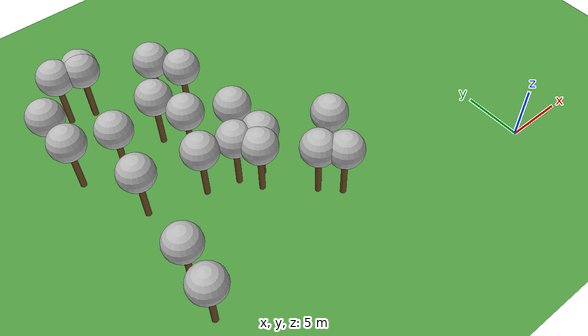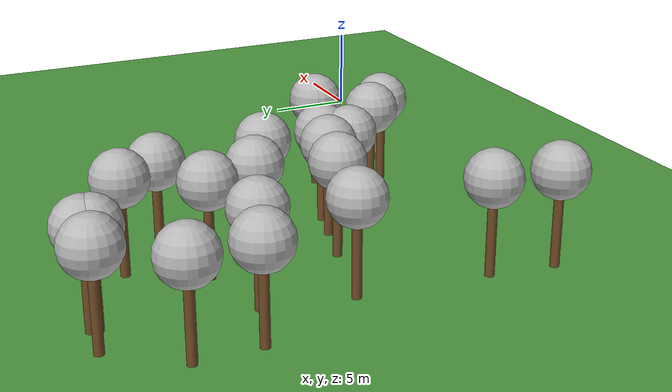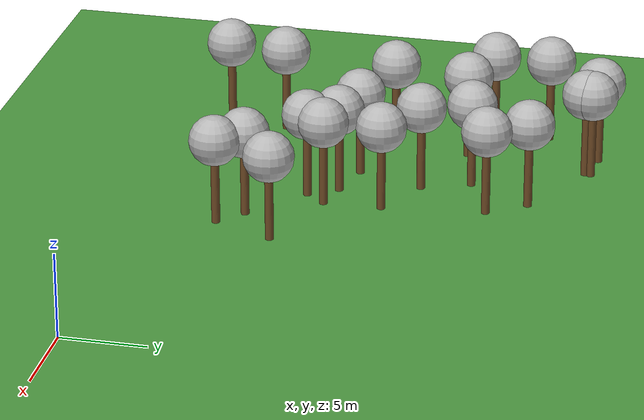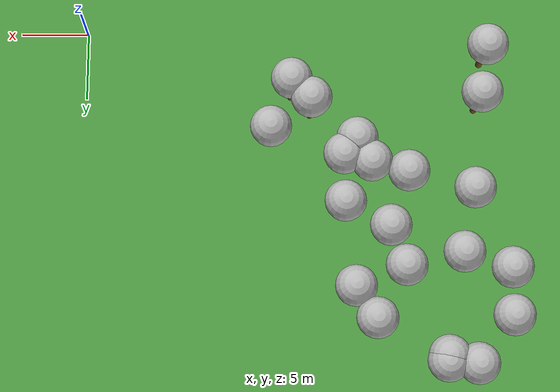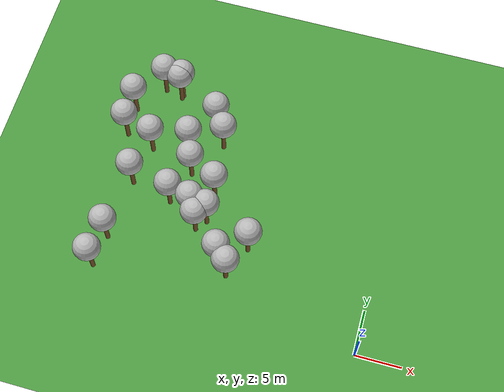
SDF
<sdf version="1.5">
 <world name="default">
  <model name="tree_simple498">
   <static>1</static>
   <link name="link">
    <pose>0 0 0.1 0 -0 0</pose>
    <collision name="collision_trunk">
     <pose>0 0 2 0 -0 0</pose>
     <geometry><cylinder><radius>0.25</radius><length>4</length></cylinder></geometry>
    </collision>
    <collision name="collision_treetop">
     <pose>0 0 5.2 0 -0 0</pose>
     <geometry><sphere><radius>1.5</radius></sphere></geometry>
    </collision>
    <visual name="trunk">
     <pose>0 0 2 0 -0 0</pose>
     <geometry><cylinder><radius>0.25</radius><length>4</length></cylinder></geometry>
     <material>
      <script>
       <uri>model://tree_simple/scripts</uri>
       <uri>model://tree_simple/materials/textures</uri>
       <name>TreeSimple/Trunk</name>
      </script>
     </material>
    </visual>
    <visual name="treetop">
     <pose>0 0 5.2 0 -0 0</pose>
     <geometry><sphere><radius>1.5</radius></sphere></geometry>
     <material>
      <script>
       <uri>model://tree_simple/scripts</uri>
       <uri>model://tree_simple/materials/textures</uri>
       <name>TreeSimple/Treetop</name>
      </script>
     </material>
    </visual>
   </link>
   <pose>-20.062069779 9.09254194943 0 0 -0 0</pose>
  </model>
  <model name="tree_simple493">
   <static>1</static>
   <link name="link">
    <pose>0 0 0.1 0 -0 0</pose>
    <collision name="collision_trunk">
     <pose>0 0 2 0 -0 0</pose>
     <geometry><cylinder><radius>0.25</radius><length>4</length></cylinder></geometry>
    </collision>
    <collision name="collision_treetop">
     <pose>0 0 5.2 0 -0 0</pose>
     <geometry><sphere><radius>1.5</radius></sphere></geometry>
    </collision>
    <visual name="trunk">
     <pose>0 0 2 0 -0 0</pose>
     <geometry><cylinder><radius>0.25</radius><length>4</length></cylinder></geometry>
     <material>
      <script>
       <uri>model://tree_simple/scripts</uri>
       <uri>model://tree_simple/materials/textures</uri>
       <name>TreeSimple/Trunk</name>
      </script>
     </material>
    </visual>
    <visual name="treetop">
     <pose>0 0 5.2 0 -0 0</pose>
     <geometry><sphere><radius>1.5</radius></sphere></geometry>
     <material>
      <script>
       <uri>model://tree_simple/scripts</uri>
       <uri>model://tree_simple/materials/textures</uri>
       <name>TreeSimple/Treetop</name>
      </script>
     </material>
    </visual>
   </link>
   <pose>-30.9686104206 18.3944298941 0 0 -0 0</pose>
  </model>
  <model name="tree_simple460">
   <static>1</static>
   <link name="link">
    <pose>0 0 0.1 0 -0 0</pose>
    <collision name="collision_trunk">
     <pose>0 0 2 0 -0 0</pose>
     <geometry><cylinder><radius>0.25</radius><length>4</length></cylinder></geometry>
    </collision>
    <collision name="collision_treetop">
     <pose>0 0 5.2 0 -0 0</pose>
     <geometry><sphere><radius>1.5</radius></sphere></geometry>
    </collision>
    <visual name="trunk">
     <pose>0 0 2 0 -0 0</pose>
     <geometry><cylinder><radius>0.25</radius><length>4</length></cylinder></geometry>
     <material>
      <script>
       <uri>model://tree_simple/scripts</uri>
       <uri>model://tree_simple/materials/textures</uri>
       <name>TreeSimple/Trunk</name>
      </script>
     </material>
    </visual>
    <visual name="treetop">
     <pose>0 0 5.2 0 -0 0</pose>
     <geometry><sphere><radius>1.5</radius></sphere></geometry>
     <material>
      <script>
       <uri>model://tree_simple/scripts</uri>
       <uri>model://tree_simple/materials/textures</uri>
       <name>TreeSimple/Treetop</name>
      </script>
     </material>
    </visual>
   </link>
   <pose>-19.1263542494 10.273291852 0 0 -0 0</pose>
  </model>
  <model name="tree_simple444">
   <static>1</static>
   <link name="link">
    <pose>0 0 0.1 0 -0 0</pose>
    <collision name="collision_trunk">
     <pose>0 0 2 0 -0 0</pose>
     <geometry><cylinder><radius>0.25</radius><length>4</length></cylinder></geometry>
    </collision>
    <collision name="collision_treetop">
     <pose>0 0 5.2 0 -0 0</pose>
     <geometry><sphere><radius>1.5</radius></sphere></geometry>
    </collision>
    <visual name="trunk">
     <pose>0 0 2 0 -0 0</pose>
     <geometry><cylinder><radius>0.25</radius><length>4</length></cylinder></geometry>
     <material>
      <script>
       <uri>model://tree_simple/scripts</uri>
       <uri>model://tree_simple/materials/textures</uri>
       <name>TreeSimple/Trunk</name>
      </script>
     </material>
    </visual>
    <visual name="treetop">
     <pose>0 0 5.2 0 -0 0</pose>
     <geometry><sphere><radius>1.5</radius></sphere></geometry>
     <material>
      <script>
       <uri>model://tree_simple/scripts</uri>
       <uri>model://tree_simple/materials/textures</uri>
       <name>TreeSimple/Treetop</name>
      </script>
     </material>
    </visual>
   </link>
   <pose>-23.7375888222 11.4825776361 0 0 -0 0</pose>
  </model>
  <model name="tree_simple440">
   <static>1</static>
   <link name="link">
    <pose>0 0 0.1 0 -0 0</pose>
    <collision name="collision_trunk">
     <pose>0 0 2 0 -0 0</pose>
     <geometry><cylinder><radius>0.25</radius><length>4</length></cylinder></geometry>
    </collision>
    <collision name="collision_treetop">
     <pose>0 0 5.2 0 -0 0</pose>
     <geometry><sphere><radius>1.5</radius></sphere></geometry>
    </collision>
    <visual name="trunk">
     <pose>0 0 2 0 -0 0</pose>
     <geometry><cylinder><radius>0.25</radius><length>4</length></cylinder></geometry>
     <material>
      <script>
       <uri>model://tree_simple/scripts</uri>
       <uri>model://tree_simple/materials/textures</uri>
       <name>TreeSimple/Trunk</name>
      </script>
     </material>
    </visual>
    <visual name="treetop">
     <pose>0 0 5.2 0 -0 0</pose>
     <geometry><sphere><radius>1.5</radius></sphere></geometry>
     <material>
      <script>
       <uri>model://tree_simple/scripts</uri>
       <uri>model://tree_simple/materials/textures</uri>
       <name>TreeSimple/Treetop</name>
      </script>
     </material>
    </visual>
   </link>
   <pose>-31.0139863597 21.7755311208 0 0 -0 0</pose>
  </model>
  <model name="tree_simple424">
   <static>1</static>
   <link name="link">
    <pose>0 0 0.1 0 -0 0</pose>
    <collision name="collision_trunk">
     <pose>0 0 2 0 -0 0</pose>
     <geometry><cylinder><radius>0.25</radius><length>4</length></cylinder></geometry>
    </collision>
    <collision name="collision_treetop">
     <pose>0 0 5.2 0 -0 0</pose>
     <geometry><sphere><radius>1.5</radius></sphere></geometry>
    </collision>
    <visual name="trunk">
     <pose>0 0 2 0 -0 0</pose>
     <geometry><cylinder><radius>0.25</radius><length>4</length></cylinder></geometry>
     <material>
      <script>
       <uri>model://tree_simple/scripts</uri>
       <uri>model://tree_simple/materials/textures</uri>
       <name>TreeSimple/Trunk</name>
      </script>
     </material>
    </visual>
    <visual name="treetop">
     <pose>0 0 5.2 0 -0 0</pose>
     <geometry><sphere><radius>1.5</radius></sphere></geometry>
     <material>
      <script>
       <uri>model://tree_simple/scripts</uri>
       <uri>model://tree_simple/materials/textures</uri>
       <name>TreeSimple/Treetop</name>
      </script>
     </material>
    </visual>
   </link>
   <pose>-16.7770993139 6.12178979124 0 0 -0 0</pose>
  </model>
  <model name="tree_simple393">
   <static>1</static>
   <link name="link">
    <pose>0 0 0.1 0 -0 0</pose>
    <collision name="collision_trunk">
     <pose>0 0 2 0 -0 0</pose>
     <geometry><cylinder><radius>0.25</radius><length>4</length></cylinder></geometry>
    </collision>
    <collision name="collision_treetop">
     <pose>0 0 5.2 0 -0 0</pose>
     <geometry><sphere><radius>1.5</radius></sphere></geometry>
    </collision>
    <visual name="trunk">
     <pose>0 0 2 0 -0 0</pose>
     <geometry><cylinder><radius>0.25</radius><length>4</length></cylinder></geometry>
     <material>
      <script>
       <uri>model://tree_simple/scripts</uri>
       <uri>model://tree_simple/materials/textures</uri>
       <name>TreeSimple/Trunk</name>
      </script>
     </material>
    </visual>
    <visual name="treetop">
     <pose>0 0 5.2 0 -0 0</pose>
     <geometry><sphere><radius>1.5</radius></sphere></geometry>
     <material>
      <script>
       <uri>model://tree_simple/scripts</uri>
       <uri>model://tree_simple/materials/textures</uri>
       <name>TreeSimple/Treetop</name>
      </script>
     </material>
    </visual>
   </link>
   <pose>-19.2161378336 13.717868908 0 0 -0 0</pose>
  </model>
  <model name="tree_simple360">
   <static>1</static>
   <link name="link">
    <pose>0 0 0.1 0 -0 0</pose>
    <collision name="collision_trunk">
     <pose>0 0 2 0 -0 0</pose>
     <geometry><cylinder><radius>0.25</radius><length>4</length></cylinder></geometry>
    </collision>
    <collision name="collision_treetop">
     <pose>0 0 5.2 0 -0 0</pose>
     <geometry><sphere><radius>1.5</radius></sphere></geometry>
    </collision>
    <visual name="trunk">
     <pose>0 0 2 0 -0 0</pose>
     <geometry><cylinder><radius>0.25</radius><length>4</length></cylinder></geometry>
     <material>
      <script>
       <uri>model://tree_simple/scripts</uri>
       <uri>model://tree_simple/materials/textures</uri>
       <name>TreeSimple/Trunk</name>
      </script>
     </material>
    </visual>
    <visual name="treetop">
     <pose>0 0 5.2 0 -0 0</pose>
     <geometry><sphere><radius>1.5</radius></sphere></geometry>
     <material>
      <script>
       <uri>model://tree_simple/scripts</uri>
       <uri>model://tree_simple/materials/textures</uri>
       <name>TreeSimple/Treetop</name>
      </script>
     </material>
    </visual>
   </link>
   <pose>-13.8761955988 8.30702560736 0 0 -0 0</pose>
  </model>
  <model name="tree_simple351">
   <static>1</static>
   <link name="link">
    <pose>0 0 0.1 0 -0 0</pose>
    <collision name="collision_trunk">
     <pose>0 0 2 0 -0 0</pose>
     <geometry><cylinder><radius>0.25</radius><length>4</length></cylinder></geometry>
    </collision>
    <collision name="collision_treetop">
     <pose>0 0 5.2 0 -0 0</pose>
     <geometry><sphere><radius>1.5</radius></sphere></geometry>
    </collision>
    <visual name="trunk">
     <pose>0 0 2 0 -0 0</pose>
     <geometry><cylinder><radius>0.25</radius><length>4</length></cylinder></geometry>
     <material>
      <script>
       <uri>model://tree_simple/scripts</uri>
       <uri>model://tree_simple/materials/textures</uri>
       <name>TreeSimple/Trunk</name>
      </script>
     </material>
    </visual>
    <visual name="treetop">
     <pose>0 0 5.2 0 -0 0</pose>
     <geometry><sphere><radius>1.5</radius></sphere></geometry>
     <material>
      <script>
       <uri>model://tree_simple/scripts</uri>
       <uri>model://tree_simple/materials/textures</uri>
       <name>TreeSimple/Treetop</name>
      </script>
     </material>
    </visual>
   </link>
   <pose>-28.4628783032 25.1782097003 0 0 -0 0</pose>
  </model>
  <model name="tree_simple338">
   <static>1</static>
   <link name="link">
    <pose>0 0 0.1 0 -0 0</pose>
    <collision name="collision_trunk">
     <pose>0 0 2 0 -0 0</pose>
     <geometry><cylinder><radius>0.25</radius><length>4</length></cylinder></geometry>
    </collision>
    <collision name="collision_treetop">
     <pose>0 0 5.2 0 -0 0</pose>
     <geometry><sphere><radius>1.5</radius></sphere></geometry>
    </collision>
    <visual name="trunk">
     <pose>0 0 2 0 -0 0</pose>
     <geometry><cylinder><radius>0.25</radius><length>4</length></cylinder></geometry>
     <material>
      <script>
       <uri>model://tree_simple/scripts</uri>
       <uri>model://tree_simple/materials/textures</uri>
       <name>TreeSimple/Trunk</name>
      </script>
     </material>
    </visual>
    <visual name="treetop">
     <pose>0 0 5.2 0 -0 0</pose>
     <geometry><sphere><radius>1.5</radius></sphere></geometry>
     <material>
      <script>
       <uri>model://tree_simple/scripts</uri>
       <uri>model://tree_simple/materials/textures</uri>
       <name>TreeSimple/Treetop</name>
      </script>
     </material>
    </visual>
   </link>
   <pose>-22.4236352143 15.4465495723 0 0 -0 0</pose>
  </model>
  <model name="tree_simple251">
   <static>1</static>
   <link name="link">
    <pose>0 0 0.1 0 -0 0</pose>
    <collision name="collision_trunk">
     <pose>0 0 2 0 -0 0</pose>
     <geometry><cylinder><radius>0.25</radius><length>4</length></cylinder></geometry>
    </collision>
    <collision name="collision_treetop">
     <pose>0 0 5.2 0 -0 0</pose>
     <geometry><sphere><radius>1.5</radius></sphere></geometry>
    </collision>
    <visual name="trunk">
     <pose>0 0 2 0 -0 0</pose>
     <geometry><cylinder><radius>0.25</radius><length>4</length></cylinder></geometry>
     <material>
      <script>
       <uri>model://tree_simple/scripts</uri>
       <uri>model://tree_simple/materials/textures</uri>
       <name>TreeSimple/Trunk</name>
      </script>
     </material>
    </visual>
    <visual name="treetop">
     <pose>0 0 5.2 0 -0 0</pose>
     <geometry><sphere><radius>1.5</radius></sphere></geometry>
     <material>
      <script>
       <uri>model://tree_simple/scripts</uri>
       <uri>model://tree_simple/materials/textures</uri>
       <name>TreeSimple/Treetop</name>
      </script>
     </material>
    </visual>
   </link>
   <pose>-19.9479400909 19.7976665809 0 0 -0 0</pose>
  </model>
  <model name="tree_simple228">
   <static>1</static>
   <link name="link">
    <pose>0 0 0.1 0 -0 0</pose>
    <collision name="collision_trunk">
     <pose>0 0 2 0 -0 0</pose>
     <geometry><cylinder><radius>0.25</radius><length>4</length></cylinder></geometry>
    </collision>
    <collision name="collision_treetop">
     <pose>0 0 5.2 0 -0 0</pose>
     <geometry><sphere><radius>1.5</radius></sphere></geometry>
    </collision>
    <visual name="trunk">
     <pose>0 0 2 0 -0 0</pose>
     <geometry><cylinder><radius>0.25</radius><length>4</length></cylinder></geometry>
     <material>
      <script>
       <uri>model://tree_simple/scripts</uri>
       <uri>model://tree_simple/materials/textures</uri>
       <name>TreeSimple/Trunk</name>
      </script>
     </material>
    </visual>
    <visual name="treetop">
     <pose>0 0 5.2 0 -0 0</pose>
     <geometry><sphere><radius>1.5</radius></sphere></geometry>
     <material>
      <script>
       <uri>model://tree_simple/scripts</uri>
       <uri>model://tree_simple/materials/textures</uri>
       <name>TreeSimple/Treetop</name>
      </script>
     </material>
    </visual>
   </link>
   <pose>-28.4416918888 12.679152397 0 0 -0 0</pose>
  </model>
  <model name="tree_simple226">
   <static>1</static>
   <link name="link">
    <pose>0 0 0.1 0 -0 0</pose>
    <collision name="collision_trunk">
     <pose>0 0 2 0 -0 0</pose>
     <geometry><cylinder><radius>0.25</radius><length>4</length></cylinder></geometry>
    </collision>
    <collision name="collision_treetop">
     <pose>0 0 5.2 0 -0 0</pose>
     <geometry><sphere><radius>1.5</radius></sphere></geometry>
    </collision>
    <visual name="trunk">
     <pose>0 0 2 0 -0 0</pose>
     <geometry><cylinder><radius>0.25</radius><length>4</length></cylinder></geometry>
     <material>
      <script>
       <uri>model://tree_simple/scripts</uri>
       <uri>model://tree_simple/materials/textures</uri>
       <name>TreeSimple/Trunk</name>
      </script>
     </material>
    </visual>
    <visual name="treetop">
     <pose>0 0 5.2 0 -0 0</pose>
     <geometry><sphere><radius>1.5</radius></sphere></geometry>
     <material>
      <script>
       <uri>model://tree_simple/scripts</uri>
       <uri>model://tree_simple/materials/textures</uri>
       <name>TreeSimple/Treetop</name>
      </script>
     </material>
    </visual>
   </link>
   <pose>-15.3498793375 4.7340721764 0 0 -0 0</pose>
  </model>
  <model name="tree_simple186">
   <static>1</static>
   <link name="link">
    <pose>0 0 0.1 0 -0 0</pose>
    <collision name="collision_trunk">
     <pose>0 0 2 0 -0 0</pose>
     <geometry><cylinder><radius>0.25</radius><length>4</length></cylinder></geometry>
    </collision>
    <collision name="collision_treetop">
     <pose>0 0 5.2 0 -0 0</pose>
     <geometry><sphere><radius>1.5</radius></sphere></geometry>
    </collision>
    <visual name="trunk">
     <pose>0 0 2 0 -0 0</pose>
     <geometry><cylinder><radius>0.25</radius><length>4</length></cylinder></geometry>
     <material>
      <script>
       <uri>model://tree_simple/scripts</uri>
       <uri>model://tree_simple/materials/textures</uri>
       <name>TreeSimple/Trunk</name>
      </script>
     </material>
    </visual>
    <visual name="treetop">
     <pose>0 0 5.2 0 -0 0</pose>
     <geometry><sphere><radius>1.5</radius></sphere></geometry>
     <material>
      <script>
       <uri>model://tree_simple/scripts</uri>
       <uri>model://tree_simple/materials/textures</uri>
       <name>TreeSimple/Treetop</name>
      </script>
     </material>
    </visual>
   </link>
   <pose>-26.4394079644 24.666728782 0 0 -0 0</pose>
  </model>
  <model name="tree_simple174">
   <static>1</static>
   <link name="link">
    <pose>0 0 0.1 0 -0 0</pose>
    <collision name="collision_trunk">
     <pose>0 0 2 0 -0 0</pose>
     <geometry><cylinder><radius>0.25</radius><length>4</length></cylinder></geometry>
    </collision>
    <collision name="collision_treetop">
     <pose>0 0 5.2 0 -0 0</pose>
     <geometry><sphere><radius>1.5</radius></sphere></geometry>
    </collision>
    <visual name="trunk">
     <pose>0 0 2 0 -0 0</pose>
     <geometry><cylinder><radius>0.25</radius><length>4</length></cylinder></geometry>
     <material>
      <script>
       <uri>model://tree_simple/scripts</uri>
       <uri>model://tree_simple/materials/textures</uri>
       <name>TreeSimple/Trunk</name>
      </script>
     </material>
    </visual>
    <visual name="treetop">
     <pose>0 0 5.2 0 -0 0</pose>
     <geometry><sphere><radius>1.5</radius></sphere></geometry>
     <material>
      <script>
       <uri>model://tree_simple/scripts</uri>
       <uri>model://tree_simple/materials/textures</uri>
       <name>TreeSimple/Treetop</name>
      </script>
     </material>
    </visual>
   </link>
   <pose>-26.363349587 25.0273342245 0 0 -0 0</pose>
  </model>
  <model name="tree_simple163">
   <static>1</static>
   <link name="link">
    <pose>0 0 0.1 0 -0 0</pose>
    <collision name="collision_trunk">
     <pose>0 0 2 0 -0 0</pose>
     <geometry><cylinder><radius>0.25</radius><length>4</length></cylinder></geometry>
    </collision>
    <collision name="collision_treetop">
     <pose>0 0 5.2 0 -0 0</pose>
     <geometry><sphere><radius>1.5</radius></sphere></geometry>
    </collision>
    <visual name="trunk">
     <pose>0 0 2 0 -0 0</pose>
     <geometry><cylinder><radius>0.25</radius><length>4</length></cylinder></geometry>
     <material>
      <script>
       <uri>model://tree_simple/scripts</uri>
       <uri>model://tree_simple/materials/textures</uri>
       <name>TreeSimple/Trunk</name>
      </script>
     </material>
    </visual>
    <visual name="treetop">
     <pose>0 0 5.2 0 -0 0</pose>
     <geometry><sphere><radius>1.5</radius></sphere></geometry>
     <material>
      <script>
       <uri>model://tree_simple/scripts</uri>
       <uri>model://tree_simple/materials/textures</uri>
       <name>TreeSimple/Treetop</name>
      </script>
     </material>
    </visual>
   </link>
   <pose>-21.1018337127 10.7784018303 0 0 -0 0</pose>
  </model>
  <model name="tree_simple162">
   <static>1</static>
   <link name="link">
    <pose>0 0 0.1 0 -0 0</pose>
    <collision name="collision_trunk">
     <pose>0 0 2 0 -0 0</pose>
     <geometry><cylinder><radius>0.25</radius><length>4</length></cylinder></geometry>
    </collision>
    <collision name="collision_treetop">
     <pose>0 0 5.2 0 -0 0</pose>
     <geometry><sphere><radius>1.5</radius></sphere></geometry>
    </collision>
    <visual name="trunk">
     <pose>0 0 2 0 -0 0</pose>
     <geometry><cylinder><radius>0.25</radius><length>4</length></cylinder></geometry>
     <material>
      <script>
       <uri>model://tree_simple/scripts</uri>
       <uri>model://tree_simple/materials/textures</uri>
       <name>TreeSimple/Trunk</name>
      </script>
     </material>
    </visual>
    <visual name="treetop">
     <pose>0 0 5.2 0 -0 0</pose>
     <geometry><sphere><radius>1.5</radius></sphere></geometry>
     <material>
      <script>
       <uri>model://tree_simple/scripts</uri>
       <uri>model://tree_simple/materials/textures</uri>
       <name>TreeSimple/Treetop</name>
      </script>
     </material>
    </visual>
   </link>
   <pose>-29.0785466271 5.63251358266 0 0 -0 0</pose>
  </model>
  <model name="tree_simple135">
   <static>1</static>
   <link name="link">
    <pose>0 0 0.1 0 -0 0</pose>
    <collision name="collision_trunk">
     <pose>0 0 2 0 -0 0</pose>
     <geometry><cylinder><radius>0.25</radius><length>4</length></cylinder></geometry>
    </collision>
    <collision name="collision_treetop">
     <pose>0 0 5.2 0 -0 0</pose>
     <geometry><sphere><radius>1.5</radius></sphere></geometry>
    </collision>
    <visual name="trunk">
     <pose>0 0 2 0 -0 0</pose>
     <geometry><cylinder><radius>0.25</radius><length>4</length></cylinder></geometry>
     <material>
      <script>
       <uri>model://tree_simple/scripts</uri>
       <uri>model://tree_simple/materials/textures</uri>
       <name>TreeSimple/Trunk</name>
      </script>
     </material>
    </visual>
    <visual name="treetop">
     <pose>0 0 5.2 0 -0 0</pose>
     <geometry><sphere><radius>1.5</radius></sphere></geometry>
     <material>
      <script>
       <uri>model://tree_simple/scripts</uri>
       <uri>model://tree_simple/materials/textures</uri>
       <name>TreeSimple/Treetop</name>
      </script>
     </material>
    </visual>
   </link>
   <pose>-29.5483415339 2.06641345063 0 0 -0 0</pose>
  </model>
  <model name="tree_simple119">
   <static>1</static>
   <link name="link">
    <pose>0 0 0.1 0 -0 0</pose>
    <collision name="collision_trunk">
     <pose>0 0 2 0 -0 0</pose>
     <geometry><cylinder><radius>0.25</radius><length>4</length></cylinder></geometry>
    </collision>
    <collision name="collision_treetop">
     <pose>0 0 5.2 0 -0 0</pose>
     <geometry><sphere><radius>1.5</radius></sphere></geometry>
    </collision>
    <visual name="trunk">
     <pose>0 0 2 0 -0 0</pose>
     <geometry><cylinder><radius>0.25</radius><length>4</length></cylinder></geometry>
     <material>
      <script>
       <uri>model://tree_simple/scripts</uri>
       <uri>model://tree_simple/materials/textures</uri>
       <name>TreeSimple/Trunk</name>
      </script>
     </material>
    </visual>
    <visual name="treetop">
     <pose>0 0 5.2 0 -0 0</pose>
     <geometry><sphere><radius>1.5</radius></sphere></geometry>
     <material>
      <script>
       <uri>model://tree_simple/scripts</uri>
       <uri>model://tree_simple/materials/textures</uri>
       <name>TreeSimple/Treetop</name>
      </script>
     </material>
    </visual>
   </link>
   <pose>-27.5998375986 17.3076325805 0 0 -0 0</pose>
  </model>
  <model name="tree_simple103">
   <static>1</static>
   <link name="link">
    <pose>0 0 0.1 0 -0 0</pose>
    <collision name="collision_trunk">
     <pose>0 0 2 0 -0 0</pose>
     <geometry><cylinder><radius>0.25</radius><length>4</length></cylinder></geometry>
    </collision>
    <collision name="collision_treetop">
     <pose>0 0 5.2 0 -0 0</pose>
     <geometry><sphere><radius>1.5</radius></sphere></geometry>
    </collision>
    <visual name="trunk">
     <pose>0 0 2 0 -0 0</pose>
     <geometry><cylinder><radius>0.25</radius><length>4</length></cylinder></geometry>
     <material>
      <script>
       <uri>model://tree_simple/scripts</uri>
       <uri>model://tree_simple/materials/textures</uri>
       <name>TreeSimple/Trunk</name>
      </script>
     </material>
    </visual>
    <visual name="treetop">
     <pose>0 0 5.2 0 -0 0</pose>
     <geometry><sphere><radius>1.5</radius></sphere></geometry>
     <material>
      <script>
       <uri>model://tree_simple/scripts</uri>
       <uri>model://tree_simple/materials/textures</uri>
       <name>TreeSimple/Treetop</name>
      </script>
     </material>
    </visual>
   </link>
   <pose>-23.5128318618 18.2920552876 0 0 -0 0</pose>
  </model>
  <model name="tree_simple79">
   <static>1</static>
   <link name="link">
    <pose>0 0 0.1 0 -0 0</pose>
    <collision name="collision_trunk">
     <pose>0 0 2 0 -0 0</pose>
     <geometry><cylinder><radius>0.25</radius><length>4</length></cylinder></geometry>
    </collision>
    <collision name="collision_treetop">
     <pose>0 0 5.2 0 -0 0</pose>
     <geometry><sphere><radius>1.5</radius></sphere></geometry>
    </collision>
    <visual name="trunk">
     <pose>0 0 2 0 -0 0</pose>
     <geometry><cylinder><radius>0.25</radius><length>4</length></cylinder></geometry>
     <material>
      <script>
       <uri>model://tree_simple/scripts</uri>
       <uri>model://tree_simple/materials/textures</uri>
       <name>TreeSimple/Trunk</name>
      </script>
     </material>
    </visual>
    <visual name="treetop">
     <pose>0 0 5.2 0 -0 0</pose>
     <geometry><sphere><radius>1.5</radius></sphere></geometry>
     <material>
      <script>
       <uri>model://tree_simple/scripts</uri>
       <uri>model://tree_simple/materials/textures</uri>
       <name>TreeSimple/Treetop</name>
      </script>
     </material>
    </visual>
   </link>
   <pose>-21.429711887 22.0499315705 0 0 -0 0</pose>
  </model>
  <model name="ground_plane">
   <static>true</static>
   <link name="link">
    <collision name="collision">
     <geometry><plane><normal>0 0 1</normal><size>250 250</size></plane></geometry>
     <surface><friction><ode><mu>1</mu><mu2>1</mu2></ode></friction></surface>
    </collision>
    <visual name="grass">
     <cast_shadows>false</cast_shadows>
     <geometry><plane><normal>0 0 1</normal><size>150 250</size></plane></geometry>
     <material>
      <script><uri>file://media/materials/scripts/Gazebo.material</uri><name>Gazebo/Grass</name></script>
     </material>
    </visual>
   </link>
  </model>
 </world>
</sdf>
